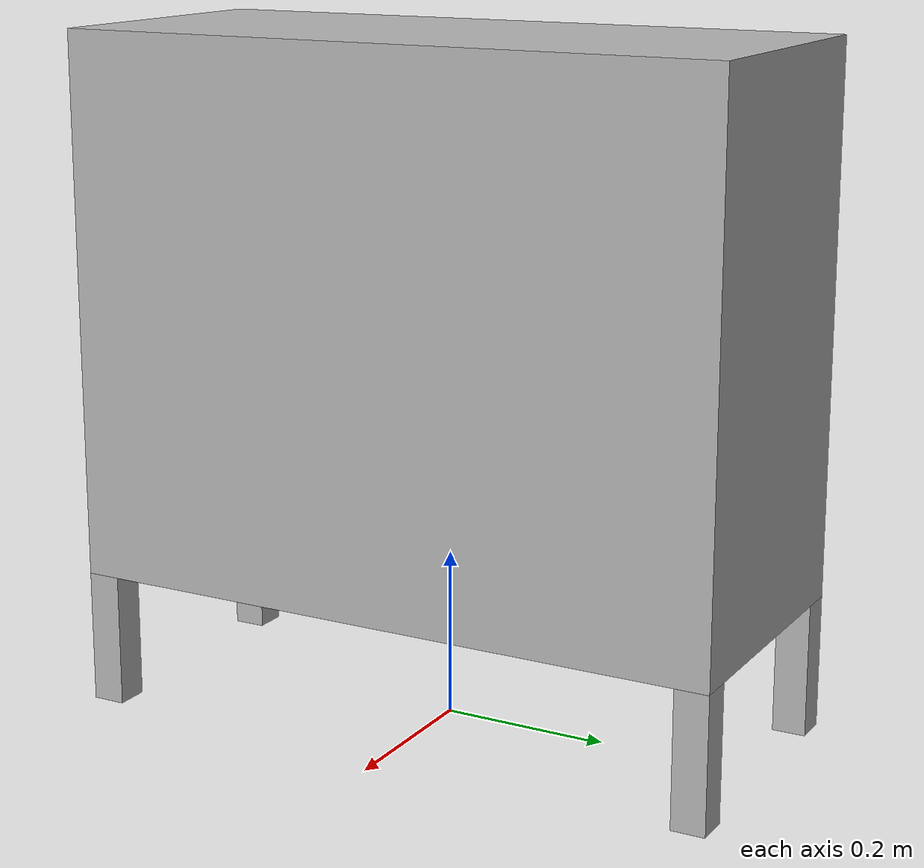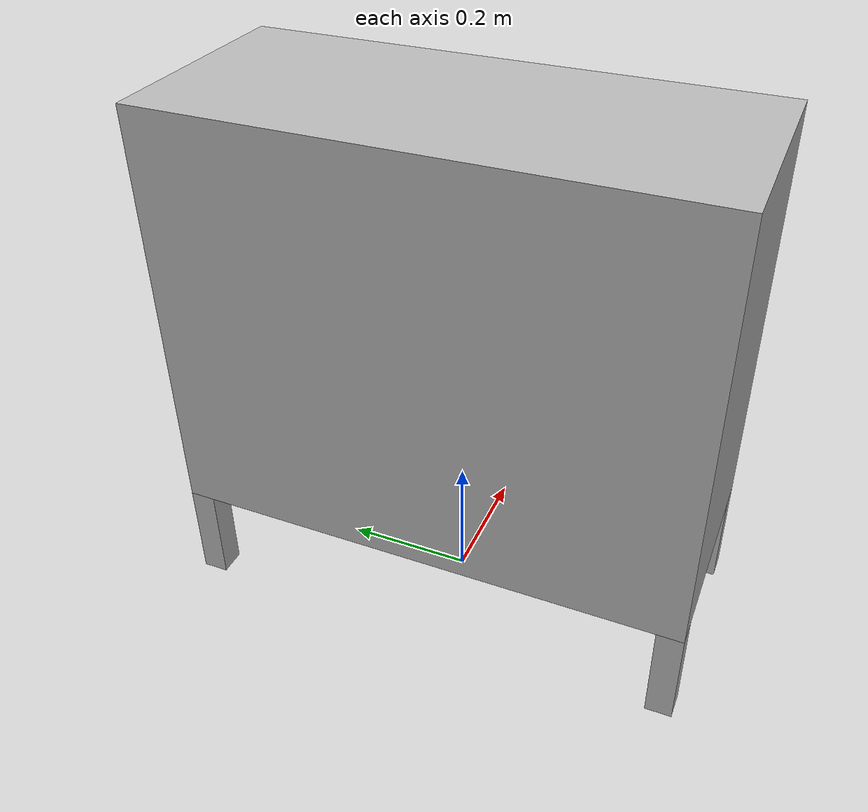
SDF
<?xml version="1.0" ?>
<sdf version="1.6">
  <model name="rwc2024/hallway_cabinet">
    <static>true</static>
    <link name="1_link">
      <collision name="1_col">
        <geometry>
          <box>
            <size>0.345 0.8 0.65</size>
          </box>
        </geometry>
      </collision>
      <visual name="1_vis">
        <geometry>
          <box>
            <size>0.345 0.8 0.65</size>
          </box>
        </geometry>
      </visual>
      <pose>0.0 0.0 0.485 0 0 0</pose>
    </link>
    <link name="2_link">
      <collision name="2_col">
        <geometry>
          <box>
            <size>0.04 0.04 0.16</size>
          </box>
        </geometry>
      </collision>
      <visual name="2_vis">
        <geometry>
          <box>
            <size>0.04 0.04 0.16</size>
          </box>
        </geometry>
      </visual>
      <pose>-0.1525 -0.38 0.08 0 0 0</pose>
    </link>
    <link name="3_link">
      <collision name="3_col">
        <geometry>
          <box>
            <size>0.04 0.04 0.16</size>
          </box>
        </geometry>
      </collision>
      <visual name="3_vis">
        <geometry>
          <box>
            <size>0.04 0.04 0.16</size>
          </box>
        </geometry>
      </visual>
      <pose>0.1525 -0.38 0.08 0 0 0</pose>
    </link>
    <link name="4_link">
      <collision name="4_col">
        <geometry>
          <box>
            <size>0.04 0.04 0.16</size>
          </box>
        </geometry>
      </collision>
      <visual name="4_vis">
        <geometry>
          <box>
            <size>0.04 0.04 0.16</size>
          </box>
        </geometry>
      </visual>
      <pose>-0.1525 0.38 0.08 0 0 0</pose>
    </link>
    <link name="5_link">
      <collision name="5_col">
        <geometry>
          <box>
            <size>0.04 0.04 0.16</size>
          </box>
        </geometry>
      </collision>
      <visual name="5_vis">
        <geometry>
          <box>
            <size>0.04 0.04 0.16</size>
          </box>
        </geometry>
      </visual>
      <pose>0.1525 0.38 0.08 0 0 0</pose>
    </link>
    <link name="on_top_of">
      <virtual_volume name="on_top_of_vv">
        <geometry>
          <box>
            <size>0.325 0.74 0.25</size>
          </box>
        </geometry>
        <pose>0.0 0.0 0.955 0 0 0</pose>
      </virtual_volume>
    </link>
    <link name="in_front_of">
      <virtual_volume name="in_front_of_vv">
        <geometry>
          <box>
            <size>0.2 0.6 0.01</size>
          </box>
        </geometry>
        <pose>0.6725 0.0 0.005 0 0 0</pose>
      </virtual_volume>
    </link>
  </model>
</sdf>
